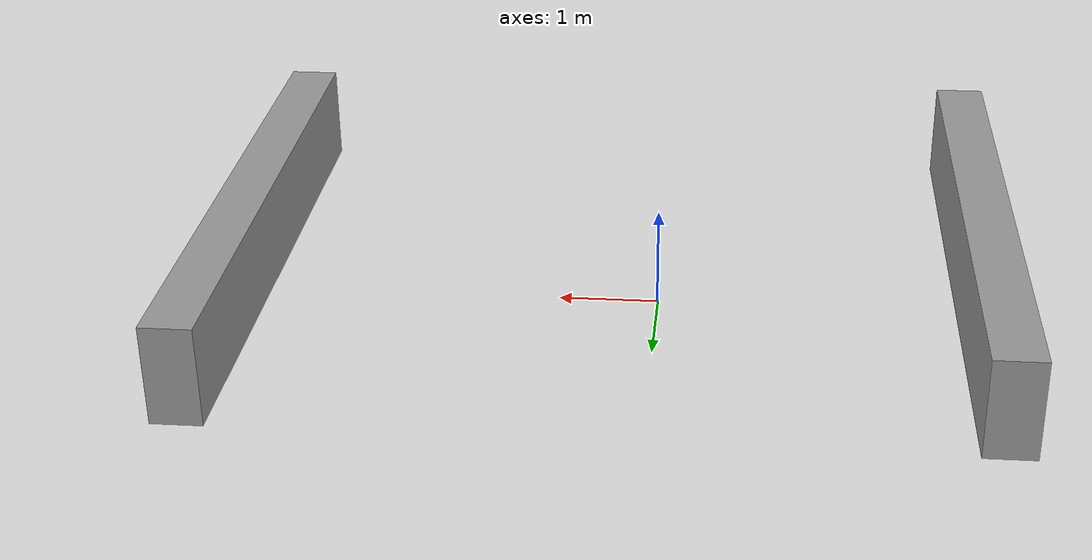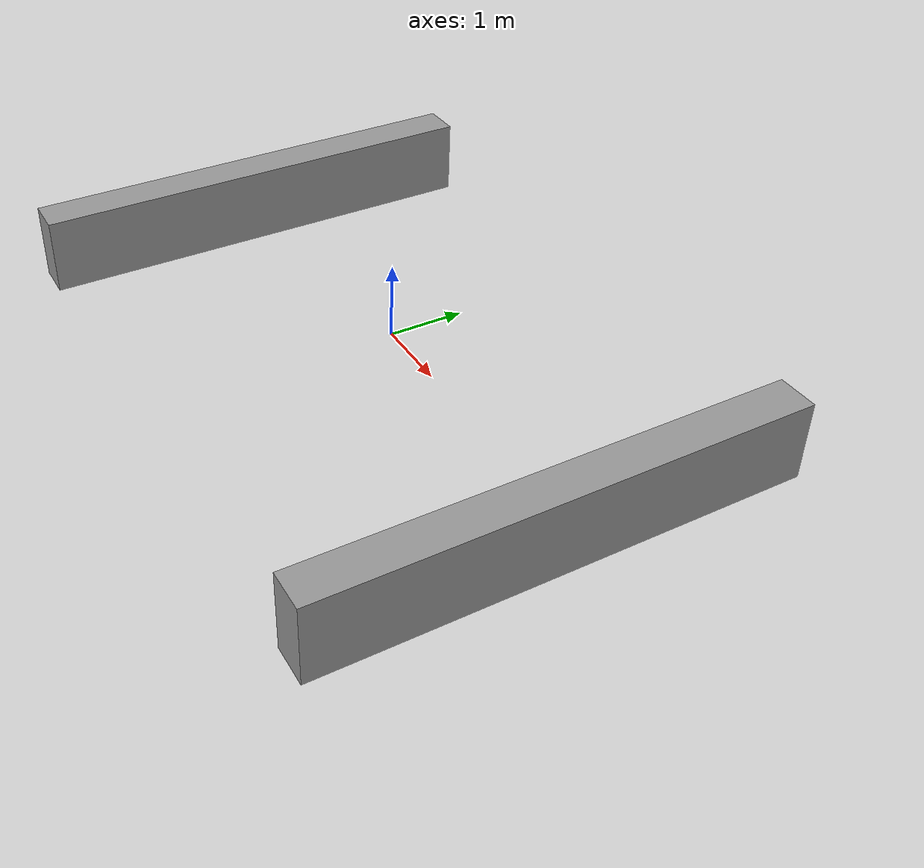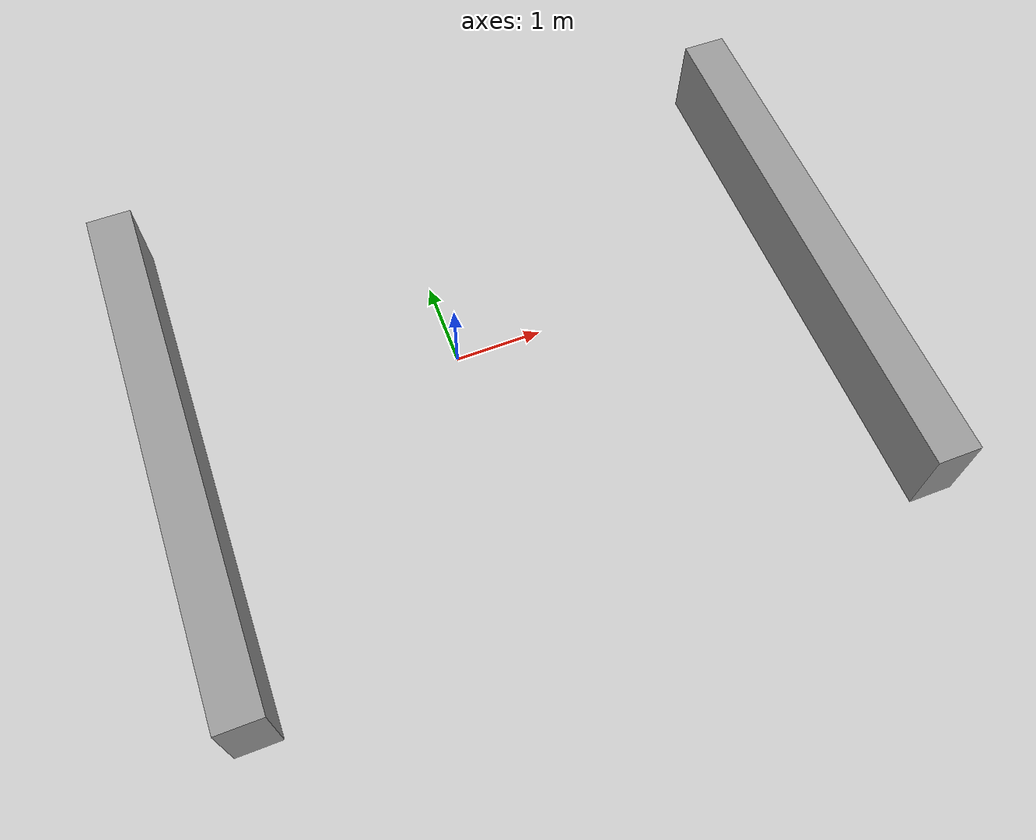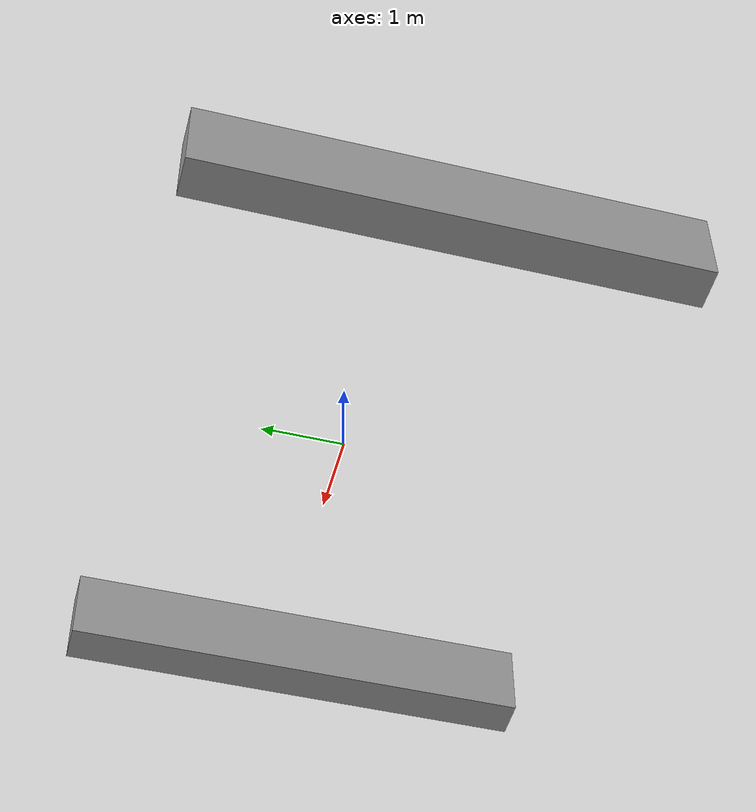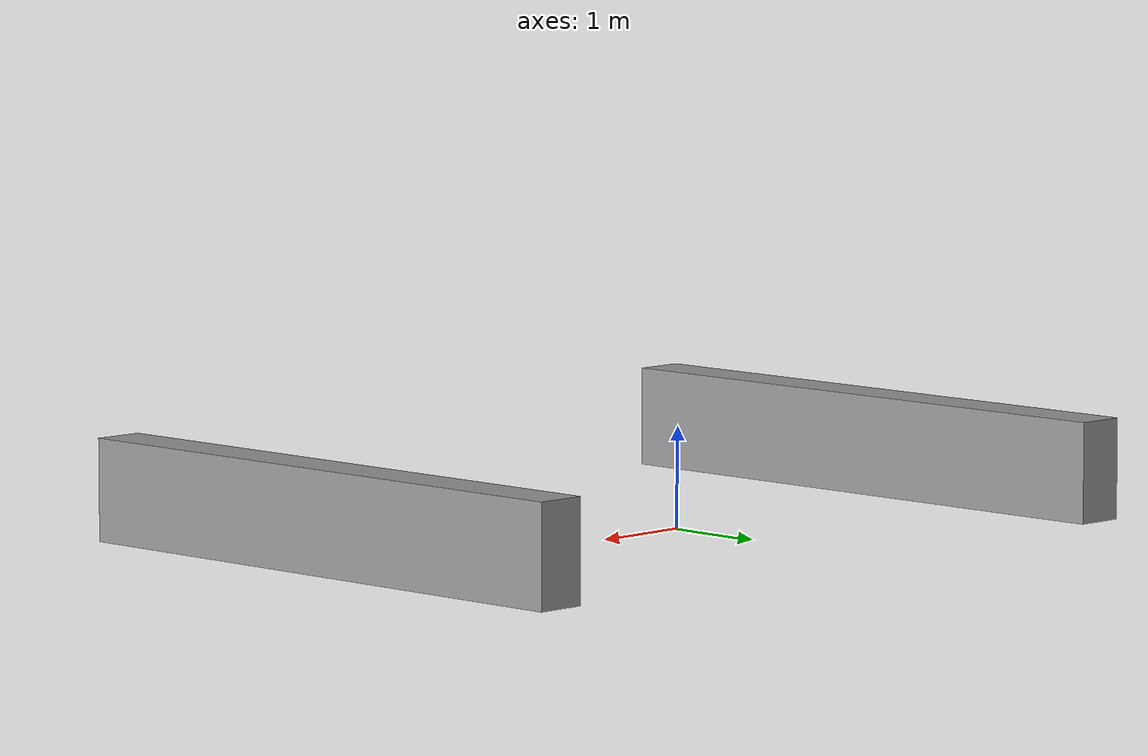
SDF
<?xml version='1.0'?>
<sdf version='1.7'>
  <model name='separador_pared'>
    <pose>0.485791 -0.391509 0 0 -0 0</pose>
    <link name='Wall_0'>
      <collision name='Wall_0_Collision'>
        <geometry>
          <box>
            <size>6 0.5 1</size>
          </box>
        </geometry>
        <pose>0 0 0.5 0 -0 0</pose>
      </collision>
      <visual name='Wall_0_Visual'>
        <pose>0 0 0.5 0 -0 0</pose>
        <geometry>
          <box>
            <size>6 0.5 1</size>
          </box>
        </geometry>
        <material>
          <script>
            <uri>file://media/materials/scripts/gazebo.material</uri>
            <name>Gazebo/Grey</name>
          </script>
          <ambient>0.627451 0.580392 0.580392 1</ambient>
        </material>
        <meta>
          <layer>0</layer>
        </meta>
      </visual>
      <pose>3.7232 0.008937 0 0 -0 1.5708</pose>
    </link>
    <link name='Wall_2'>
      <collision name='Wall_2_Collision'>
        <geometry>
          <box>
            <size>6 0.5 1</size>
          </box>
        </geometry>
        <pose>0 0 0.5 0 -0 0</pose>
      </collision>
      <visual name='Wall_2_Visual'>
        <pose>0 0 0.5 0 -0 0</pose>
        <geometry>
          <box>
            <size>6 0.5 1</size>
          </box>
        </geometry>
        <material>
          <script>
            <uri>file://media/materials/scripts/gazebo.material</uri>
            <name>Gazebo/Grey</name>
          </script>
          <ambient>0.368627 0.360784 0.392157 1</ambient>
        </material>
        <meta>
          <layer>0</layer>
        </meta>
      </visual>
      <pose>-3.7232 -0.008937 0 0 -0 -1.5708</pose>
    </link>
    <static>1</static>
  </model>
</sdf>
